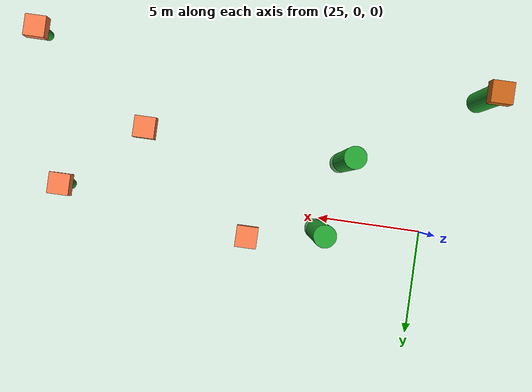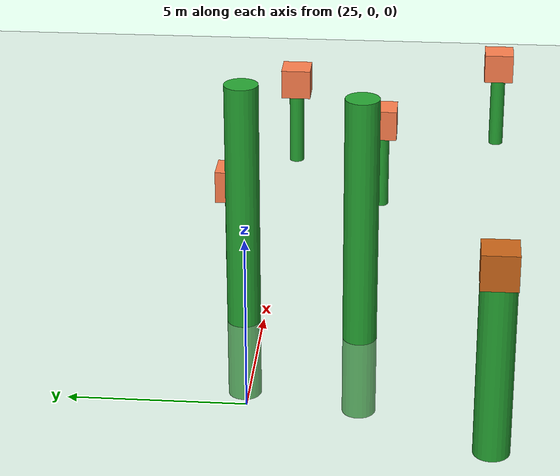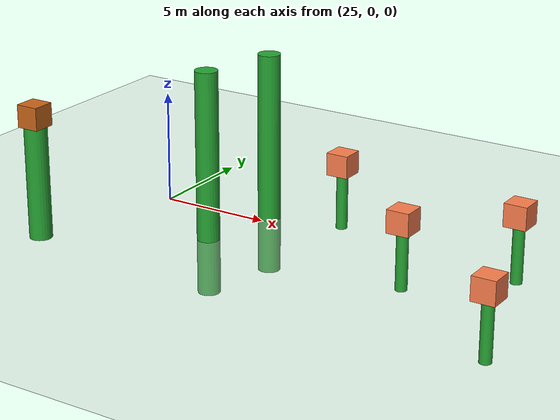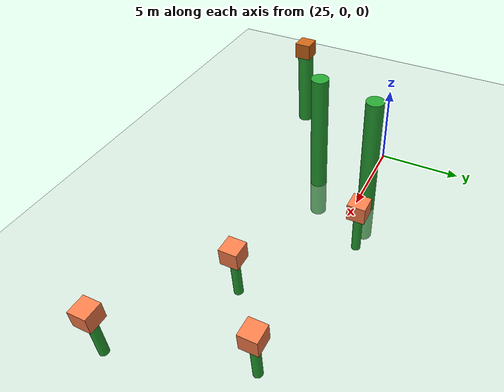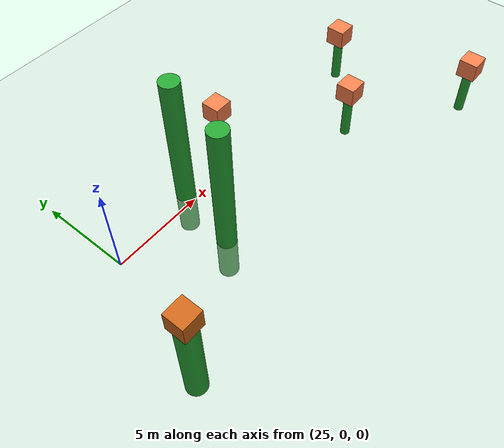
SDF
<sdf version="1.7">
 <world name="default">
  <model name="ground_plane">
   <static>1</static>
   <link name="link">
    <collision name="collision">
     <geometry><plane><normal>0 0 1</normal><size>100 100</size></plane></geometry>
     <surface>
      <contact><collide_bitmask>65535</collide_bitmask></contact>
      <friction><ode><mu>100</mu><mu2>50</mu2></ode></friction>
     </surface>
    </collision>
    <visual name="visual">
     <cast_shadows>0</cast_shadows>
     <geometry><plane><normal>0 0 1</normal><size>100 100</size></plane></geometry>
     <material>
      <script><uri>file://media/materials/scripts/gazebo.material</uri><name>Gazebo/Grey</name></script>
     </material>
    </visual>
   </link>
  </model>
  <model name="unit_cylinder_green_2_clone_clone_21">
   <link name="link">
    <inertial>
     <mass>1</mass>
     <inertia><ixx>0.145833</ixx><ixy>0</ixy><ixz>0</ixz><iyy>0.145833</iyy><iyz>0</iyz><izz>0.125</izz></inertia>
    </inertial>
    <visual name="visual">
     <geometry><cylinder><radius>0.5</radius><length>10</length></cylinder></geometry>
     <material>
      <script><name>Gazebo/Green</name><uri>file://media/materials/scripts/gazebo.material</uri></script>
      <shader type="pixel"><normal_map>__default__</normal_map></shader>
      <ambient>0 1 0.3 1</ambient>
      <diffuse>0.7 0.7 0.7 1</diffuse>
      <specular>0.01 0.01 0.01 1</specular>
      <emissive>0 0 0 1</emissive>
     </material>
    </visual>
    <collision name="collision">
     <geometry><cylinder><radius>0.5</radius><length>5</length></cylinder></geometry>
     <surface>
      <friction>
       <ode><mu>1</mu><mu2>1</mu2><fdir1>0 0 0</fdir1><slip1>0</slip1><slip2>0</slip2></ode>
       <torsional>
        <coefficient>1</coefficient>
        <patch_radius>0</patch_radius>
        <surface_radius>0</surface_radius>
        <use_patch_radius>1</use_patch_radius>
        <ode><slip>0</slip></ode>
       </torsional>
      </friction>
      <bounce><restitution_coefficient>0</restitution_coefficient><threshold>1e+06</threshold></bounce>
      <contact>
       <collide_without_contact>0</collide_without_contact>
       <collide_without_contact_bitmask>1</collide_without_contact_bitmask>
       <collide_bitmask>1</collide_bitmask>
       <ode>
        <soft_cfm>0</soft_cfm>
        <soft_erp>0.2</soft_erp>
        <kp>1e+13</kp>
        <kd>1</kd>
        <max_vel>0.01</max_vel>
        <min_depth>0</min_depth>
       </ode>
       <bullet>
        <split_impulse>1</split_impulse>
        <split_impulse_penetration_threshold>-0.01</split_impulse_penetration_threshold>
        <soft_cfm>0</soft_cfm>
        <soft_erp>0.2</soft_erp>
        <kp>1e+13</kp>
        <kd>1</kd>
       </bullet>
      </contact>
     </surface>
    </collision>
   </link>
   <static>1</static>
   <pose>29.1591 -2.89554 2.5 0 0 -0.000967</pose>
  </model>
  <model name="unit_cylinder_green_2_clone_clone_28_clone_clone">
   <link name="link">
    <inertial>
     <mass>1</mass>
     <inertia><ixx>0.145833</ixx><ixy>0</ixy><ixz>0</ixz><iyy>0.145833</iyy><iyz>0</iyz><izz>0.125</izz></inertia>
    </inertial>
    <visual name="visual">
     <geometry><cylinder><radius>0.5</radius><length>10</length></cylinder></geometry>
     <material>
      <script><name>Gazebo/Green</name><uri>file://media/materials/scripts/gazebo.material</uri></script>
      <shader type="pixel"><normal_map>__default__</normal_map></shader>
      <ambient>0 1 0.3 1</ambient>
      <diffuse>0.7 0.7 0.7 1</diffuse>
      <specular>0.01 0.01 0.01 1</specular>
      <emissive>0 0 0 1</emissive>
     </material>
    </visual>
    <collision name="collision">
     <geometry><cylinder><radius>0.5</radius><length>5</length></cylinder></geometry>
     <surface>
      <friction>
       <ode><mu>1</mu><mu2>1</mu2><fdir1>0 0 0</fdir1><slip1>0</slip1><slip2>0</slip2></ode>
       <torsional>
        <coefficient>1</coefficient>
        <patch_radius>0</patch_radius>
        <surface_radius>0</surface_radius>
        <use_patch_radius>1</use_patch_radius>
        <ode><slip>0</slip></ode>
       </torsional>
      </friction>
      <bounce><restitution_coefficient>0</restitution_coefficient><threshold>1e+06</threshold></bounce>
      <contact>
       <collide_without_contact>0</collide_without_contact>
       <collide_without_contact_bitmask>1</collide_without_contact_bitmask>
       <collide_bitmask>1</collide_bitmask>
       <ode>
        <soft_cfm>0</soft_cfm>
        <soft_erp>0.2</soft_erp>
        <kp>1e+13</kp>
        <kd>1</kd>
        <max_vel>0.01</max_vel>
        <min_depth>0</min_depth>
       </ode>
       <bullet>
        <split_impulse>1</split_impulse>
        <split_impulse_penetration_threshold>-0.01</split_impulse_penetration_threshold>
        <soft_cfm>0</soft_cfm>
        <soft_erp>0.2</soft_erp>
        <kp>1e+13</kp>
        <kd>1</kd>
       </bullet>
      </contact>
     </surface>
    </collision>
   </link>
   <static>1</static>
   <pose>29.9886 0.601001 2.5 0 0 -0.000941</pose>
  </model>
  <model name="unit_cylinder_green_2_clone_clone_3_clone_0_clone_0_clone_9">
   <link name="link">
    <inertial>
     <mass>1</mass>
     <inertia><ixx>0.145833</ixx><ixy>0</ixy><ixz>0</ixz><iyy>0.145833</iyy><iyz>0</iyz><izz>0.125</izz></inertia>
    </inertial>
    <visual name="visual">
     <geometry><cylinder><radius>0.5</radius><length>5</length></cylinder></geometry>
     <material>
      <script><name>Gazebo/Green</name><uri>file://media/materials/scripts/gazebo.material</uri></script>
      <shader type="pixel"><normal_map>__default__</normal_map></shader>
      <ambient>0 1 0.3 1</ambient>
      <diffuse>0.7 0.7 0.7 1</diffuse>
      <specular>0.01 0.01 0.01 1</specular>
      <emissive>0 0 0 1</emissive>
     </material>
    </visual>
    <collision name="collision">
     <geometry><cylinder><radius>0.5</radius><length>5</length></cylinder></geometry>
     <surface>
      <friction>
       <ode><mu>1</mu><mu2>1</mu2><fdir1>0 0 0</fdir1><slip1>0</slip1><slip2>0</slip2></ode>
       <torsional>
        <coefficient>1</coefficient>
        <patch_radius>0</patch_radius>
        <surface_radius>0</surface_radius>
        <use_patch_radius>1</use_patch_radius>
        <ode><slip>0</slip></ode>
       </torsional>
      </friction>
      <bounce><restitution_coefficient>0</restitution_coefficient><threshold>1e+06</threshold></bounce>
      <contact>
       <collide_without_contact>0</collide_without_contact>
       <collide_without_contact_bitmask>1</collide_without_contact_bitmask>
       <collide_bitmask>1</collide_bitmask>
       <ode>
        <soft_cfm>0</soft_cfm>
        <soft_erp>0.2</soft_erp>
        <kp>1e+13</kp>
        <kd>1</kd>
        <max_vel>0.01</max_vel>
        <min_depth>0</min_depth>
       </ode>
       <bullet>
        <split_impulse>1</split_impulse>
        <split_impulse_penetration_threshold>-0.01</split_impulse_penetration_threshold>
        <soft_cfm>0</soft_cfm>
        <soft_erp>0.2</soft_erp>
        <kp>1e+13</kp>
        <kd>1</kd>
       </bullet>
      </contact>
     </surface>
    </collision>
   </link>
   <link name="link_3">
    <inertial>
     <mass>1</mass>
     <inertia>
      <ixx>0.166667</ixx>
      <ixy>0</ixy>
      <ixz>0</ixz>
      <iyy>0.166667</iyy>
      <iyz>0</iyz>
      <izz>0.166667</izz>
     </inertia>
    </inertial>
    <pose>0 0 3 0 -0 0.000935</pose>
    <visual name="visual">
     <geometry><box><size>1 1 1</size></box></geometry>
     <material>
      <lighting>1</lighting>
      <script><uri>file://media/materials/scripts/gazebo.material</uri><name>Gazebo/Grey</name></script>
      <shader type="pixel"><normal_map>__default__</normal_map></shader>
      <ambient>0.8 0.4 0.1 1</ambient>
      <diffuse>0.7 0.7 0.7 1</diffuse>
      <specular>0.01 0.01 0.01 1</specular>
      <emissive>0 0 0 1</emissive>
     </material>
    </visual>
    <collision name="collision">
     <geometry><box><size>1 1 1</size></box></geometry>
     <surface>
      <friction>
       <ode><mu>1</mu><mu2>1</mu2><fdir1>0 0 0</fdir1><slip1>0</slip1><slip2>0</slip2></ode>
       <torsional>
        <coefficient>1</coefficient>
        <patch_radius>0</patch_radius>
        <surface_radius>0</surface_radius>
        <use_patch_radius>1</use_patch_radius>
        <ode><slip>0</slip></ode>
       </torsional>
      </friction>
      <bounce><restitution_coefficient>0</restitution_coefficient><threshold>1e+06</threshold></bounce>
      <contact>
       <collide_without_contact>0</collide_without_contact>
       <collide_without_contact_bitmask>1</collide_without_contact_bitmask>
       <collide_bitmask>1</collide_bitmask>
       <ode>
        <soft_cfm>0</soft_cfm>
        <soft_erp>0.2</soft_erp>
        <kp>1e+13</kp>
        <kd>1</kd>
        <max_vel>0.01</max_vel>
        <min_depth>0</min_depth>
       </ode>
       <bullet>
        <split_impulse>1</split_impulse>
        <split_impulse_penetration_threshold>-0.01</split_impulse_penetration_threshold>
        <soft_cfm>0</soft_cfm>
        <soft_erp>0.2</soft_erp>
        <kp>1e+13</kp>
        <kd>1</kd>
       </bullet>
      </contact>
     </surface>
    </collision>
   </link>
   <static>1</static>
   <pose>23.0243 -6.68799 2.49999 0 0 -0.000935</pose>
  </model>
  <model name="unit_cylinder_green_2_clone_clone_3_clone_0_clone_0_clone_62">
   <link name="link">
    <inertial>
     <mass>1</mass>
     <inertia><ixx>0.145833</ixx><ixy>0</ixy><ixz>0</ixz><iyy>0.145833</iyy><iyz>0</iyz><izz>0.125</izz></inertia>
    </inertial>
    <pose>0 0 -1.25 0 -0 0</pose>
    <visual name="visual">
     <geometry><cylinder><radius>0.25</radius><length>2.5</length></cylinder></geometry>
     <material>
      <script><name>Gazebo/Green</name><uri>file://media/materials/scripts/gazebo.material</uri></script>
      <shader type="pixel"><normal_map>__default__</normal_map></shader>
      <ambient>0 1 0.3 1</ambient>
      <diffuse>0.7 0.7 0.7 1</diffuse>
      <specular>0.01 0.01 0.01 1</specular>
      <emissive>0 0 0 1</emissive>
     </material>
    </visual>
    <collision name="collision">
     <geometry><cylinder><radius>0.5</radius><length>5</length></cylinder></geometry>
     <surface>
      <friction>
       <ode><mu>1</mu><mu2>1</mu2><fdir1>0 0 0</fdir1><slip1>0</slip1><slip2>0</slip2></ode>
       <torsional>
        <coefficient>1</coefficient>
        <patch_radius>0</patch_radius>
        <surface_radius>0</surface_radius>
        <use_patch_radius>1</use_patch_radius>
        <ode><slip>0</slip></ode>
       </torsional>
      </friction>
      <bounce><restitution_coefficient>0</restitution_coefficient><threshold>1e+06</threshold></bounce>
      <contact>
       <collide_without_contact>0</collide_without_contact>
       <collide_without_contact_bitmask>1</collide_without_contact_bitmask>
       <collide_bitmask>1</collide_bitmask>
       <ode>
        <soft_cfm>0</soft_cfm>
        <soft_erp>0.2</soft_erp>
        <kp>1e+13</kp>
        <kd>1</kd>
        <max_vel>0.01</max_vel>
        <min_depth>0</min_depth>
       </ode>
       <bullet>
        <split_impulse>1</split_impulse>
        <split_impulse_penetration_threshold>-0.01</split_impulse_penetration_threshold>
        <soft_cfm>0</soft_cfm>
        <soft_erp>0.2</soft_erp>
        <kp>1e+13</kp>
        <kd>1</kd>
       </bullet>
      </contact>
     </surface>
    </collision>
   </link>
   <link name="link_3">
    <inertial>
     <mass>1</mass>
     <inertia>
      <ixx>0.166667</ixx>
      <ixy>0</ixy>
      <ixz>0</ixz>
      <iyy>0.166667</iyy>
      <iyz>0</iyz>
      <izz>0.166667</izz>
     </inertia>
    </inertial>
    <pose>0 0 0.5 0 -0 0.000935</pose>
    <visual name="visual">
     <geometry><box><size>1 1 1</size></box></geometry>
     <material>
      <lighting>1</lighting>
      <script><uri>file://media/materials/scripts/gazebo.material</uri><name>Gazebo/Grey</name></script>
      <shader type="pixel"><normal_map>__default__</normal_map></shader>
      <ambient>1 0.5 0.3 1</ambient>
      <diffuse>0.7 0.7 0.7 1</diffuse>
      <specular>0.01 0.01 0.01 1</specular>
      <emissive>0 0 0 1</emissive>
     </material>
    </visual>
    <collision name="collision">
     <geometry><box><size>1 1 1</size></box></geometry>
     <surface>
      <friction>
       <ode><mu>1</mu><mu2>1</mu2><fdir1>0 0 0</fdir1><slip1>0</slip1><slip2>0</slip2></ode>
       <torsional>
        <coefficient>1</coefficient>
        <patch_radius>0</patch_radius>
        <surface_radius>0</surface_radius>
        <use_patch_radius>1</use_patch_radius>
        <ode><slip>0</slip></ode>
       </torsional>
      </friction>
      <bounce><restitution_coefficient>0</restitution_coefficient><threshold>1e+06</threshold></bounce>
      <contact>
       <collide_without_contact>0</collide_without_contact>
       <collide_without_contact_bitmask>1</collide_without_contact_bitmask>
       <collide_bitmask>1</collide_bitmask>
       <ode>
        <soft_cfm>0</soft_cfm>
        <soft_erp>0.2</soft_erp>
        <kp>1e+13</kp>
        <kd>1</kd>
        <max_vel>0.01</max_vel>
        <min_depth>0</min_depth>
       </ode>
       <bullet>
        <split_impulse>1</split_impulse>
        <split_impulse_penetration_threshold>-0.01</split_impulse_penetration_threshold>
        <soft_cfm>0</soft_cfm>
        <soft_erp>0.2</soft_erp>
        <kp>1e+13</kp>
        <kd>1</kd>
       </bullet>
      </contact>
     </surface>
    </collision>
   </link>
   <static>1</static>
   <pose>33.3292 1.26451 2.49999 0 0 -0.000935</pose>
  </model>
  <model name="unit_cylinder_green_2_clone_clone_3_clone_0_clone_0_clone_63">
   <link name="link">
    <inertial>
     <mass>1</mass>
     <inertia><ixx>0.145833</ixx><ixy>0</ixy><ixz>0</ixz><iyy>0.145833</iyy><iyz>0</iyz><izz>0.125</izz></inertia>
    </inertial>
    <pose>0 0 -1.25 0 -0 0</pose>
    <visual name="visual">
     <geometry><cylinder><radius>0.25</radius><length>2.5</length></cylinder></geometry>
     <material>
      <script><name>Gazebo/Green</name><uri>file://media/materials/scripts/gazebo.material</uri></script>
      <shader type="pixel"><normal_map>__default__</normal_map></shader>
      <ambient>0 1 0.3 1</ambient>
      <diffuse>0.7 0.7 0.7 1</diffuse>
      <specular>0.01 0.01 0.01 1</specular>
      <emissive>0 0 0 1</emissive>
     </material>
    </visual>
    <collision name="collision">
     <geometry><cylinder><radius>0.5</radius><length>5</length></cylinder></geometry>
     <surface>
      <friction>
       <ode><mu>1</mu><mu2>1</mu2><fdir1>0 0 0</fdir1><slip1>0</slip1><slip2>0</slip2></ode>
       <torsional>
        <coefficient>1</coefficient>
        <patch_radius>0</patch_radius>
        <surface_radius>0</surface_radius>
        <use_patch_radius>1</use_patch_radius>
        <ode><slip>0</slip></ode>
       </torsional>
      </friction>
      <bounce><restitution_coefficient>0</restitution_coefficient><threshold>1e+06</threshold></bounce>
      <contact>
       <collide_without_contact>0</collide_without_contact>
       <collide_without_contact_bitmask>1</collide_without_contact_bitmask>
       <collide_bitmask>1</collide_bitmask>
       <ode>
        <soft_cfm>0</soft_cfm>
        <soft_erp>0.2</soft_erp>
        <kp>1e+13</kp>
        <kd>1</kd>
        <max_vel>0.01</max_vel>
        <min_depth>0</min_depth>
       </ode>
       <bullet>
        <split_impulse>1</split_impulse>
        <split_impulse_penetration_threshold>-0.01</split_impulse_penetration_threshold>
        <soft_cfm>0</soft_cfm>
        <soft_erp>0.2</soft_erp>
        <kp>1e+13</kp>
        <kd>1</kd>
       </bullet>
      </contact>
     </surface>
    </collision>
   </link>
   <link name="link_3">
    <inertial>
     <mass>1</mass>
     <inertia>
      <ixx>0.166667</ixx>
      <ixy>0</ixy>
      <ixz>0</ixz>
      <iyy>0.166667</iyy>
      <iyz>0</iyz>
      <izz>0.166667</izz>
     </inertia>
    </inertial>
    <pose>0 0 0.5 0 -0 0.000935</pose>
    <visual name="visual">
     <geometry><box><size>1 1 1</size></box></geometry>
     <material>
      <lighting>1</lighting>
      <script><uri>file://media/materials/scripts/gazebo.material</uri><name>Gazebo/Grey</name></script>
      <shader type="pixel"><normal_map>__default__</normal_map></shader>
      <ambient>1 0.5 0.3 1</ambient>
      <diffuse>0.7 0.7 0.7 1</diffuse>
      <specular>0.01 0.01 0.01 1</specular>
      <emissive>0 0 0 1</emissive>
     </material>
    </visual>
    <collision name="collision">
     <geometry><box><size>1 1 1</size></box></geometry>
     <surface>
      <friction>
       <ode><mu>1</mu><mu2>1</mu2><fdir1>0 0 0</fdir1><slip1>0</slip1><slip2>0</slip2></ode>
       <torsional>
        <coefficient>1</coefficient>
        <patch_radius>0</patch_radius>
        <surface_radius>0</surface_radius>
        <use_patch_radius>1</use_patch_radius>
        <ode><slip>0</slip></ode>
       </torsional>
      </friction>
      <bounce><restitution_coefficient>0</restitution_coefficient><threshold>1e+06</threshold></bounce>
      <contact>
       <collide_without_contact>0</collide_without_contact>
       <collide_without_contact_bitmask>1</collide_without_contact_bitmask>
       <collide_bitmask>1</collide_bitmask>
       <ode>
        <soft_cfm>0</soft_cfm>
        <soft_erp>0.2</soft_erp>
        <kp>1e+13</kp>
        <kd>1</kd>
        <max_vel>0.01</max_vel>
        <min_depth>0</min_depth>
       </ode>
       <bullet>
        <split_impulse>1</split_impulse>
        <split_impulse_penetration_threshold>-0.01</split_impulse_penetration_threshold>
        <soft_cfm>0</soft_cfm>
        <soft_erp>0.2</soft_erp>
        <kp>1e+13</kp>
        <kd>1</kd>
       </bullet>
      </contact>
     </surface>
    </collision>
   </link>
   <static>1</static>
   <pose>44.346 -7.07367 2.49999 0 0 -0.000935</pose>
  </model>
  <model name="unit_cylinder_green_2_clone_clone_3_clone_0_clone_0_clone_66">
   <link name="link">
    <inertial>
     <mass>1</mass>
     <inertia><ixx>0.145833</ixx><ixy>0</ixy><ixz>0</ixz><iyy>0.145833</iyy><iyz>0</iyz><izz>0.125</izz></inertia>
    </inertial>
    <pose>0 0 -1.25 0 -0 0</pose>
    <visual name="visual">
     <geometry><cylinder><radius>0.25</radius><length>2.5</length></cylinder></geometry>
     <material>
      <script><name>Gazebo/Green</name><uri>file://media/materials/scripts/gazebo.material</uri></script>
      <shader type="pixel"><normal_map>__default__</normal_map></shader>
      <ambient>0 1 0.3 1</ambient>
      <diffuse>0.7 0.7 0.7 1</diffuse>
      <specular>0.01 0.01 0.01 1</specular>
      <emissive>0 0 0 1</emissive>
     </material>
    </visual>
    <collision name="collision">
     <geometry><cylinder><radius>0.5</radius><length>5</length></cylinder></geometry>
     <surface>
      <friction>
       <ode><mu>1</mu><mu2>1</mu2><fdir1>0 0 0</fdir1><slip1>0</slip1><slip2>0</slip2></ode>
       <torsional>
        <coefficient>1</coefficient>
        <patch_radius>0</patch_radius>
        <surface_radius>0</surface_radius>
        <use_patch_radius>1</use_patch_radius>
        <ode><slip>0</slip></ode>
       </torsional>
      </friction>
      <bounce><restitution_coefficient>0</restitution_coefficient><threshold>1e+06</threshold></bounce>
      <contact>
       <collide_without_contact>0</collide_without_contact>
       <collide_without_contact_bitmask>1</collide_without_contact_bitmask>
       <collide_bitmask>1</collide_bitmask>
       <ode>
        <soft_cfm>0</soft_cfm>
        <soft_erp>0.2</soft_erp>
        <kp>1e+13</kp>
        <kd>1</kd>
        <max_vel>0.01</max_vel>
        <min_depth>0</min_depth>
       </ode>
       <bullet>
        <split_impulse>1</split_impulse>
        <split_impulse_penetration_threshold>-0.01</split_impulse_penetration_threshold>
        <soft_cfm>0</soft_cfm>
        <soft_erp>0.2</soft_erp>
        <kp>1e+13</kp>
        <kd>1</kd>
       </bullet>
      </contact>
     </surface>
    </collision>
   </link>
   <link name="link_3">
    <inertial>
     <mass>1</mass>
     <inertia>
      <ixx>0.166667</ixx>
      <ixy>0</ixy>
      <ixz>0</ixz>
      <iyy>0.166667</iyy>
      <iyz>0</iyz>
      <izz>0.166667</izz>
     </inertia>
    </inertial>
    <pose>0 0 0.5 0 -0 0.000935</pose>
    <visual name="visual">
     <geometry><box><size>1 1 1</size></box></geometry>
     <material>
      <lighting>1</lighting>
      <script><uri>file://media/materials/scripts/gazebo.material</uri><name>Gazebo/Grey</name></script>
      <shader type="pixel"><normal_map>__default__</normal_map></shader>
      <ambient>1 0.5 0.3 1</ambient>
      <diffuse>0.7 0.7 0.7 1</diffuse>
      <specular>0.01 0.01 0.01 1</specular>
      <emissive>0 0 0 1</emissive>
     </material>
    </visual>
    <collision name="collision">
     <geometry><box><size>1 1 1</size></box></geometry>
     <surface>
      <friction>
       <ode><mu>1</mu><mu2>1</mu2><fdir1>0 0 0</fdir1><slip1>0</slip1><slip2>0</slip2></ode>
       <torsional>
        <coefficient>1</coefficient>
        <patch_radius>0</patch_radius>
        <surface_radius>0</surface_radius>
        <use_patch_radius>1</use_patch_radius>
        <ode><slip>0</slip></ode>
       </torsional>
      </friction>
      <bounce><restitution_coefficient>0</restitution_coefficient><threshold>1e+06</threshold></bounce>
      <contact>
       <collide_without_contact>0</collide_without_contact>
       <collide_without_contact_bitmask>1</collide_without_contact_bitmask>
       <collide_bitmask>1</collide_bitmask>
       <ode>
        <soft_cfm>0</soft_cfm>
        <soft_erp>0.2</soft_erp>
        <kp>1e+13</kp>
        <kd>1</kd>
        <max_vel>0.01</max_vel>
        <min_depth>0</min_depth>
       </ode>
       <bullet>
        <split_impulse>1</split_impulse>
        <split_impulse_penetration_threshold>-0.01</split_impulse_penetration_threshold>
        <soft_cfm>0</soft_cfm>
        <soft_erp>0.2</soft_erp>
        <kp>1e+13</kp>
        <kd>1</kd>
       </bullet>
      </contact>
     </surface>
    </collision>
   </link>
   <static>1</static>
   <pose>38.6976 -3.12505 2.49999 0 0 -0.000935</pose>
  </model>
  <model name="unit_cylinder_green_2_clone_clone_3_clone_0_clone_0_clone_67">
   <link name="link">
    <inertial>
     <mass>1</mass>
     <inertia><ixx>0.145833</ixx><ixy>0</ixy><ixz>0</ixz><iyy>0.145833</iyy><iyz>0</iyz><izz>0.125</izz></inertia>
    </inertial>
    <pose>0 0 -1.25 0 -0 0</pose>
    <visual name="visual">
     <geometry><cylinder><radius>0.25</radius><length>2.5</length></cylinder></geometry>
     <material>
      <script><name>Gazebo/Green</name><uri>file://media/materials/scripts/gazebo.material</uri></script>
      <shader type="pixel"><normal_map>__default__</normal_map></shader>
      <ambient>0 1 0.3 1</ambient>
      <diffuse>0.7 0.7 0.7 1</diffuse>
      <specular>0.01 0.01 0.01 1</specular>
      <emissive>0 0 0 1</emissive>
     </material>
    </visual>
    <collision name="collision">
     <geometry><cylinder><radius>0.5</radius><length>5</length></cylinder></geometry>
     <surface>
      <friction>
       <ode><mu>1</mu><mu2>1</mu2><fdir1>0 0 0</fdir1><slip1>0</slip1><slip2>0</slip2></ode>
       <torsional>
        <coefficient>1</coefficient>
        <patch_radius>0</patch_radius>
        <surface_radius>0</surface_radius>
        <use_patch_radius>1</use_patch_radius>
        <ode><slip>0</slip></ode>
       </torsional>
      </friction>
      <bounce><restitution_coefficient>0</restitution_coefficient><threshold>1e+06</threshold></bounce>
      <contact>
       <collide_without_contact>0</collide_without_contact>
       <collide_without_contact_bitmask>1</collide_without_contact_bitmask>
       <collide_bitmask>1</collide_bitmask>
       <ode>
        <soft_cfm>0</soft_cfm>
        <soft_erp>0.2</soft_erp>
        <kp>1e+13</kp>
        <kd>1</kd>
        <max_vel>0.01</max_vel>
        <min_depth>0</min_depth>
       </ode>
       <bullet>
        <split_impulse>1</split_impulse>
        <split_impulse_penetration_threshold>-0.01</split_impulse_penetration_threshold>
        <soft_cfm>0</soft_cfm>
        <soft_erp>0.2</soft_erp>
        <kp>1e+13</kp>
        <kd>1</kd>
       </bullet>
      </contact>
     </surface>
    </collision>
   </link>
   <link name="link_3">
    <inertial>
     <mass>1</mass>
     <inertia>
      <ixx>0.166667</ixx>
      <ixy>0</ixy>
      <ixz>0</ixz>
      <iyy>0.166667</iyy>
      <iyz>0</iyz>
      <izz>0.166667</izz>
     </inertia>
    </inertial>
    <pose>0 0 0.5 0 -0 0.000935</pose>
    <visual name="visual">
     <geometry><box><size>1 1 1</size></box></geometry>
     <material>
      <lighting>1</lighting>
      <script><uri>file://media/materials/scripts/gazebo.material</uri><name>Gazebo/Grey</name></script>
      <shader type="pixel"><normal_map>__default__</normal_map></shader>
      <ambient>1 0.5 0.3 1</ambient>
      <diffuse>0.7 0.7 0.7 1</diffuse>
      <specular>0.01 0.01 0.01 1</specular>
      <emissive>0 0 0 1</emissive>
     </material>
    </visual>
    <collision name="collision">
     <geometry><box><size>1 1 1</size></box></geometry>
     <surface>
      <friction>
       <ode><mu>1</mu><mu2>1</mu2><fdir1>0 0 0</fdir1><slip1>0</slip1><slip2>0</slip2></ode>
       <torsional>
        <coefficient>1</coefficient>
        <patch_radius>0</patch_radius>
        <surface_radius>0</surface_radius>
        <use_patch_radius>1</use_patch_radius>
        <ode><slip>0</slip></ode>
       </torsional>
      </friction>
      <bounce><restitution_coefficient>0</restitution_coefficient><threshold>1e+06</threshold></bounce>
      <contact>
       <collide_without_contact>0</collide_without_contact>
       <collide_without_contact_bitmask>1</collide_without_contact_bitmask>
       <collide_bitmask>1</collide_bitmask>
       <ode>
        <soft_cfm>0</soft_cfm>
        <soft_erp>0.2</soft_erp>
        <kp>1e+13</kp>
        <kd>1</kd>
        <max_vel>0.01</max_vel>
        <min_depth>0</min_depth>
       </ode>
       <bullet>
        <split_impulse>1</split_impulse>
        <split_impulse_penetration_threshold>-0.01</split_impulse_penetration_threshold>
        <soft_cfm>0</soft_cfm>
        <soft_erp>0.2</soft_erp>
        <kp>1e+13</kp>
        <kd>1</kd>
       </bullet>
      </contact>
     </surface>
    </collision>
   </link>
   <static>1</static>
   <pose>42.2523 0.001071 2.49999 0 0 -0.000935</pose>
  </model>
 </world>
</sdf>
